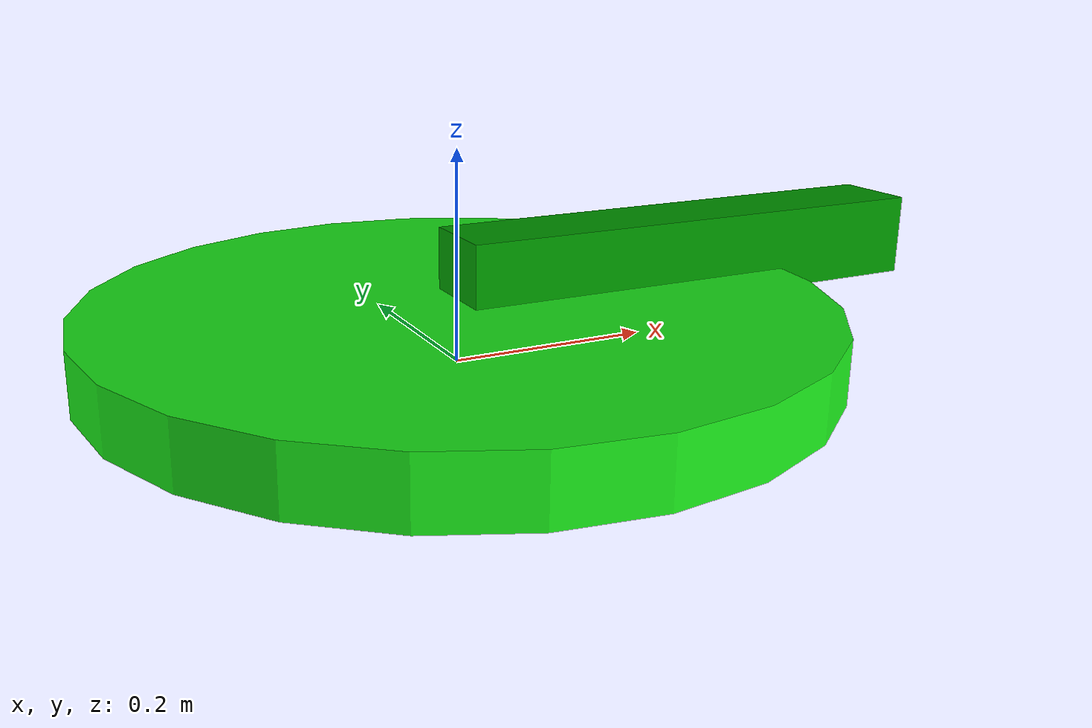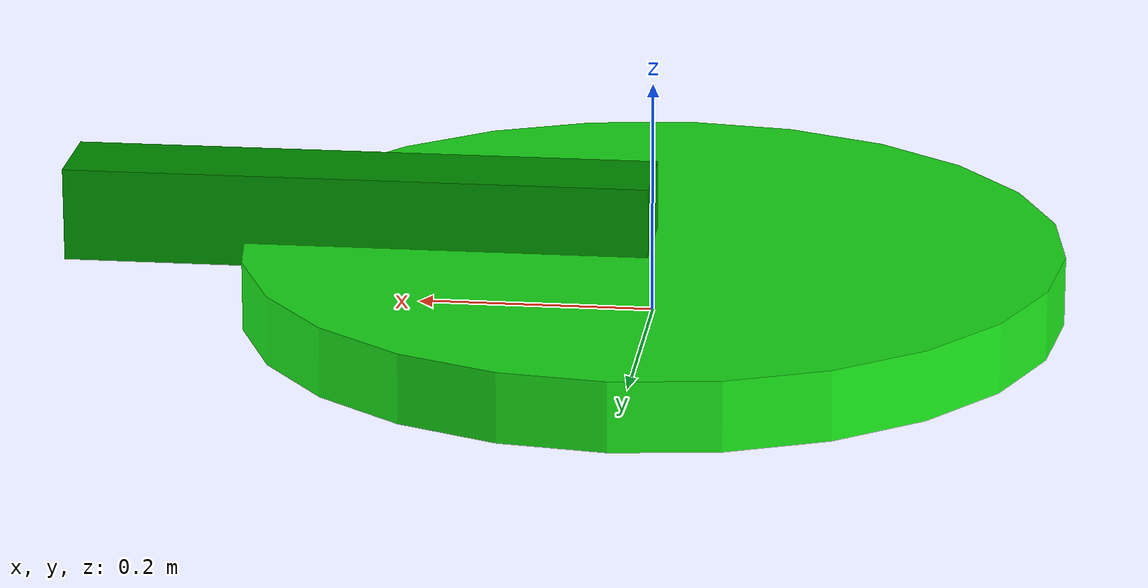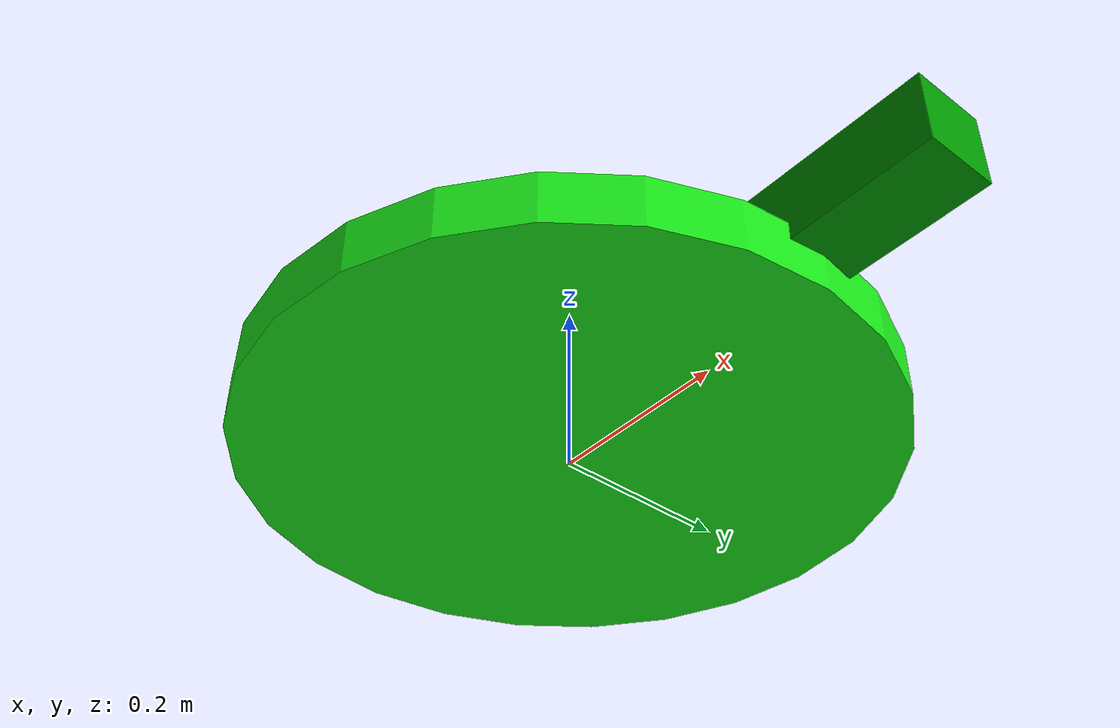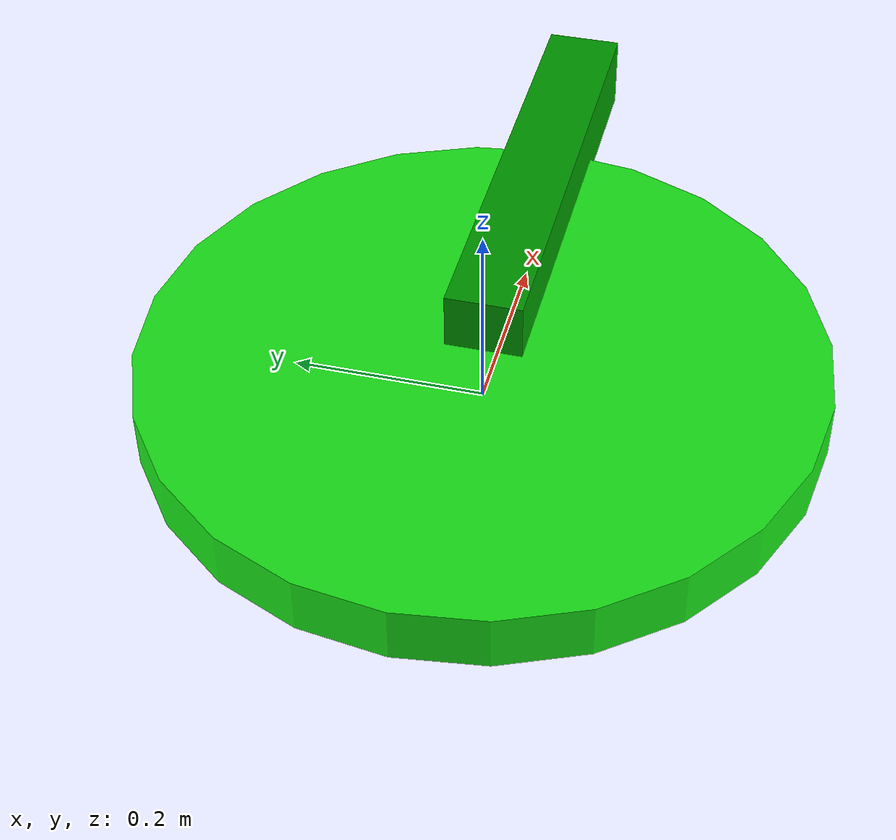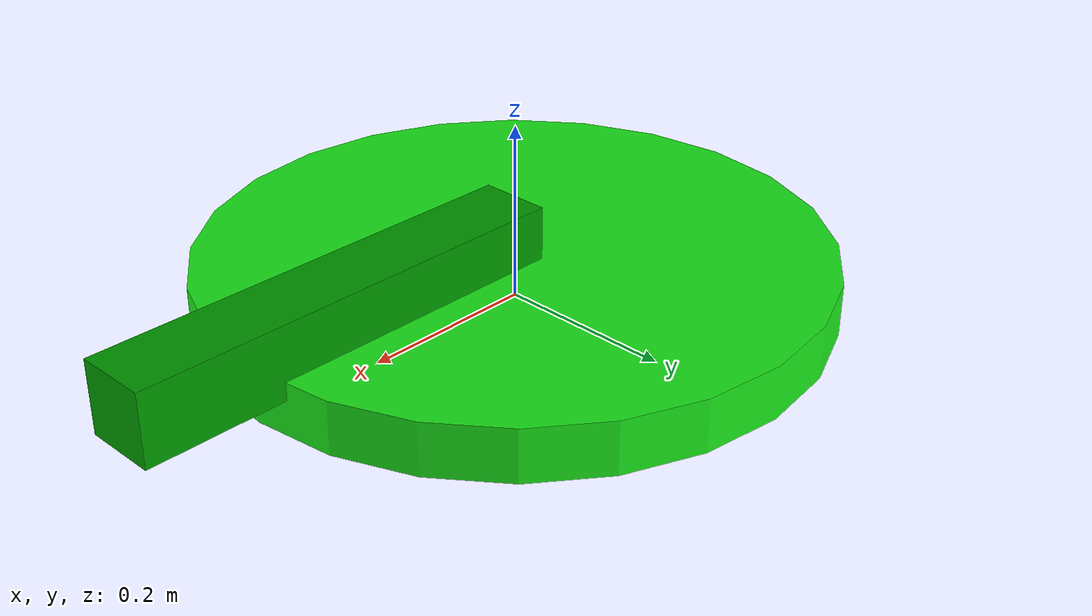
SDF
<?xml version="1.0"?>
<sdf version="1.6">
  <model name="start_marker">
    <static>true</static>
    <link name="marker_link">
      <visual name="cylinder_visual">
        <pose>0 0 0.03 0 0 0</pose>
        <geometry>
          <cylinder>
            <radius>0.35</radius>
            <length>0.06</length>
          </cylinder>
        </geometry>
        <material>
          <ambient>0.1 0.9 0.1 0.95</ambient>
          <diffuse>0.1 0.9 0.1 0.95</diffuse>
        </material>
      </visual>
      <visual name="arrow_body_visual">
        <pose>0.25 0 0.08 0 0 0</pose>
        <geometry>
          <box>
            <size>0.5 0.08 0.08</size>
          </box>
        </geometry>
        <material>
          <ambient>0.0 0.6 0.0 1</ambient>
          <diffuse>0.0 0.6 0.0 1</diffuse>
        </material>
      </visual>
    </link>
  </model>
</sdf>
